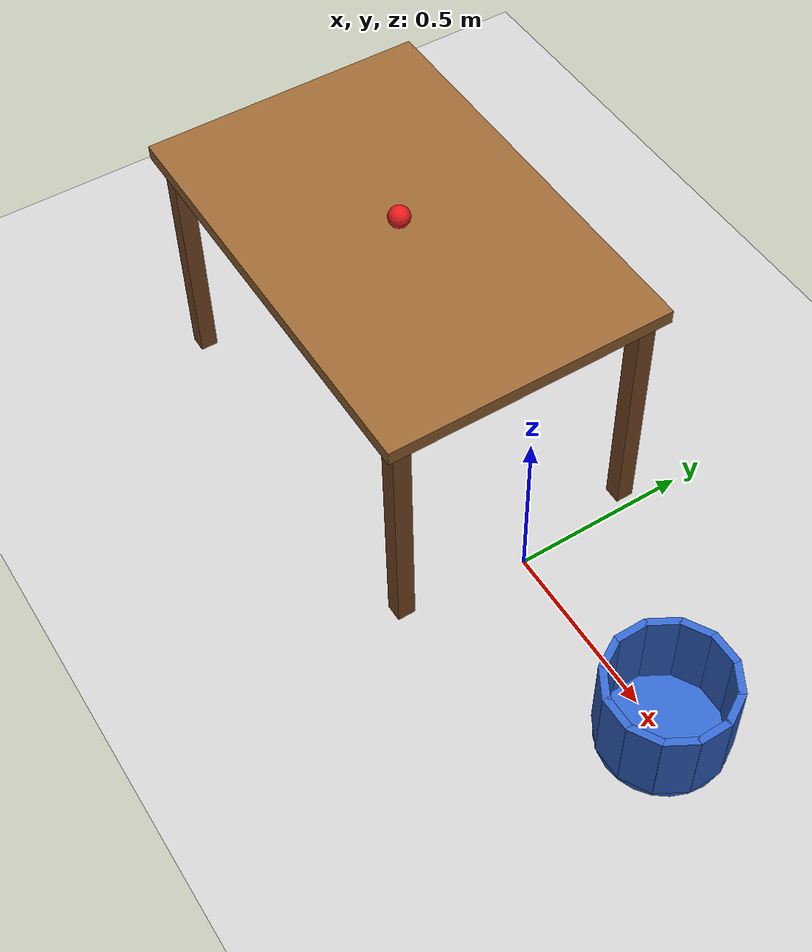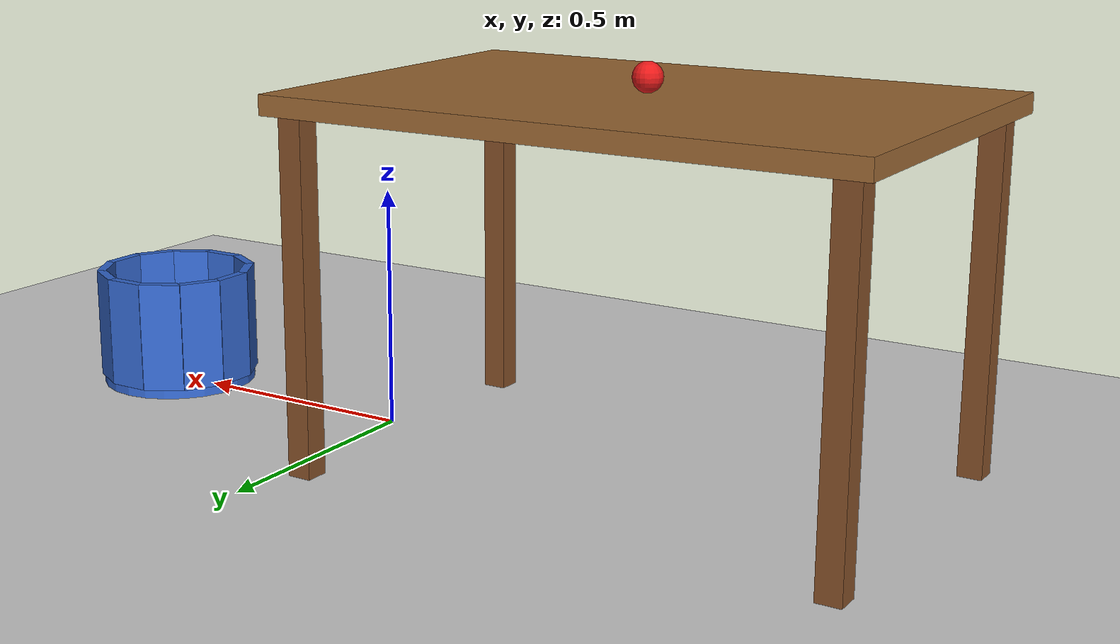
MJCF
<mujoco model="ball_off_table_into_bucket">
  <option timestep="0.002"/>
  <visual>
    <global offwidth="1280" offheight="720"/>
  </visual>
  <worldbody>
    <light name="sun" pos="0 0 3" dir="0 0 -1" diffuse="0.8 0.8 0.8"/>
    <geom name="floor" type="plane" size="3 3 0.1" rgba="0.8 0.8 0.8 1"/>

    <body name="table" pos="0 0 0">
      <geom name="table_top" type="box" size="0.6 0.4 0.02" pos="-0.6 0 0.73" rgba="0.6 0.4 0.2 1"/>
      <geom name="table_leg1" type="box" size="0.025 0.025 0.355" pos="-1.15 0.35 0.355" rgba="0.5 0.3 0.15 1"/>
      <geom name="table_leg2" type="box" size="0.025 0.025 0.355" pos="-1.15 -0.35 0.355" rgba="0.5 0.3 0.15 1"/>
      <geom name="table_leg3" type="box" size="0.025 0.025 0.355" pos="-0.05 0.35 0.355" rgba="0.5 0.3 0.15 1"/>
      <geom name="table_leg4" type="box" size="0.025 0.025 0.355" pos="-0.05 -0.35 0.355" rgba="0.5 0.3 0.15 1"/>
    </body>

    <body name="bucket" pos="0.6 0 0">
      <geom name="bucket_floor" type="cylinder" size="0.17 0.01" pos="0 0 0.01" condim="6" friction="1 0.005 0.01" rgba="0.2 0.4 0.8 1"/>
      <geom name="bucket_wall0" type="box" size="0.01 0.045 0.12" pos="0.16 0 0.14" euler="0 0 0" rgba="0.2 0.4 0.8 1"/>
      <geom name="bucket_wall1" type="box" size="0.01 0.045 0.12" pos="0.1386 0.08 0.14" euler="0 0 30" rgba="0.2 0.4 0.8 1"/>
      <geom name="bucket_wall2" type="box" size="0.01 0.045 0.12" pos="0.08 0.1386 0.14" euler="0 0 60" rgba="0.2 0.4 0.8 1"/>
      <geom name="bucket_wall3" type="box" size="0.01 0.045 0.12" pos="0 0.16 0.14" euler="0 0 90" rgba="0.2 0.4 0.8 1"/>
      <geom name="bucket_wall4" type="box" size="0.01 0.045 0.12" pos="-0.08 0.1386 0.14" euler="0 0 120" rgba="0.2 0.4 0.8 1"/>
      <geom name="bucket_wall5" type="box" size="0.01 0.045 0.12" pos="-0.1386 0.08 0.14" euler="0 0 150" rgba="0.2 0.4 0.8 1"/>
      <geom name="bucket_wall6" type="box" size="0.01 0.045 0.12" pos="-0.16 0 0.14" euler="0 0 180" rgba="0.2 0.4 0.8 1"/>
      <geom name="bucket_wall7" type="box" size="0.01 0.045 0.12" pos="-0.1386 -0.08 0.14" euler="0 0 210" rgba="0.2 0.4 0.8 1"/>
      <geom name="bucket_wall8" type="box" size="0.01 0.045 0.12" pos="-0.08 -0.1386 0.14" euler="0 0 240" rgba="0.2 0.4 0.8 1"/>
      <geom name="bucket_wall9" type="box" size="0.01 0.045 0.12" pos="0 -0.16 0.14" euler="0 0 270" rgba="0.2 0.4 0.8 1"/>
      <geom name="bucket_wall10" type="box" size="0.01 0.045 0.12" pos="0.08 -0.1386 0.14" euler="0 0 300" rgba="0.2 0.4 0.8 1"/>
      <geom name="bucket_wall11" type="box" size="0.01 0.045 0.12" pos="0.1386 -0.08 0.14" euler="0 0 330" rgba="0.2 0.4 0.8 1"/>
    </body>

    <body name="ball" pos="-0.6 0 0.78">
      <freejoint/>
      <geom name="ball" type="sphere" size="0.03" rgba="0.9 0.1 0.1 1"/>
    </body>
  </worldbody>

  <keyframe>
    <key name="start" qpos="-0.6 0 0.78 1 0 0 0" qvel="1.674 0 0 0 55.8 0"/>
  </keyframe>
</mujoco>
